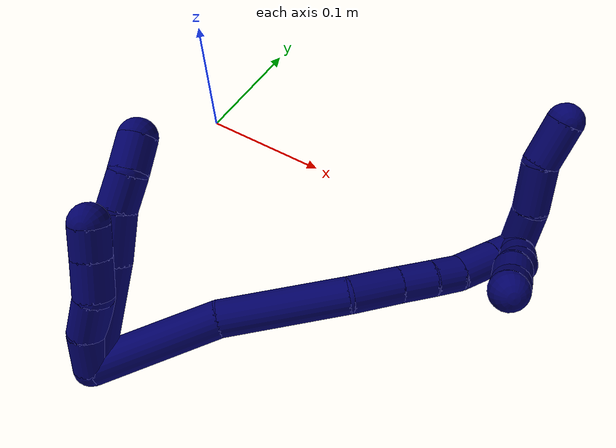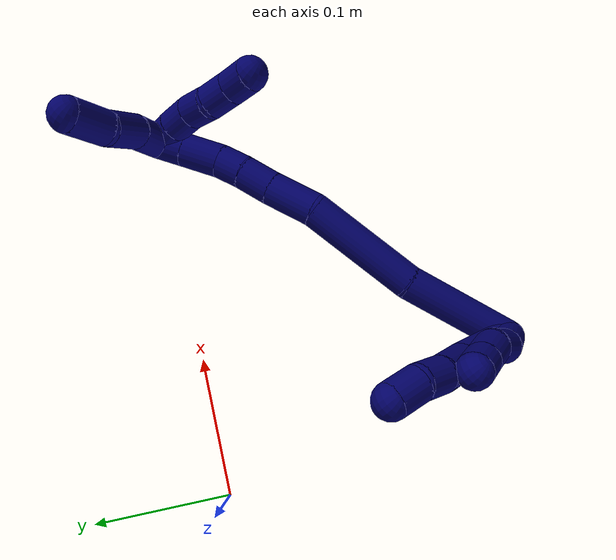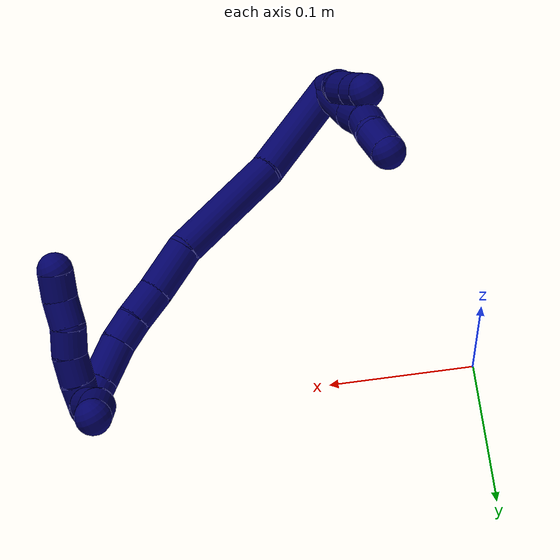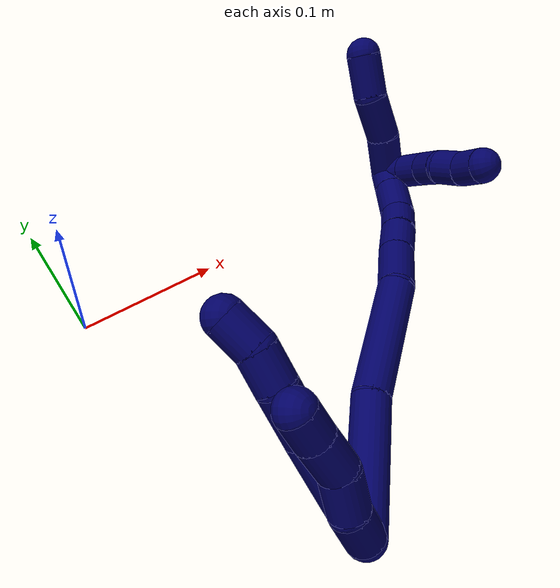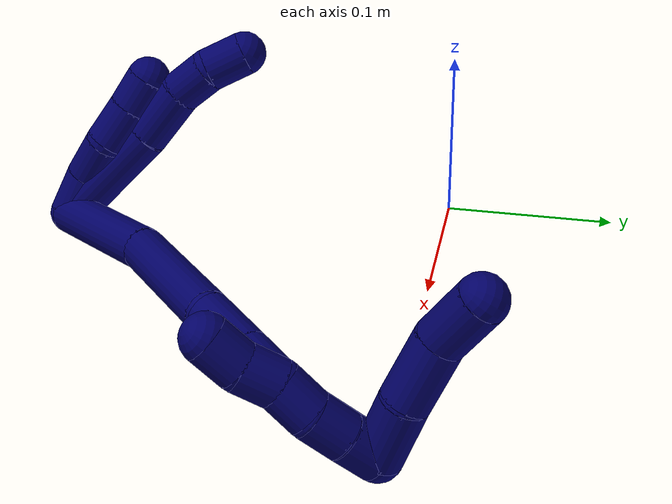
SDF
<sdf version="1.7">
 <world name="default">
  <model name="7">
   <static>0</static>
   <link name="7">
    <collision name="collision-cylinder-e_1_2_8">
     <pose>-0.006309 0.034603 -0.002682 -1.64816 -0.179816 0.194207</pose>
     <geometry><cylinder><radius>0.0125</radius><length>0.070551</length></cylinder></geometry>
     <surface>
      <friction><ode><mu>1.16</mu><mu2>1.16</mu2><slip1>0</slip1><slip2>0</slip2></ode></friction>
      <contact><ode><kp>1e+06</kp><kd>1</kd><max_vel>0</max_vel><min_depth>0.001</min_depth></ode></contact>
     </surface>
    </collision>
    <visual name="visual-cylinder-e_1_2_8">
     <pose>-0.006309 0.034603 -0.002682 -1.64816 -0.179816 0.194207</pose>
     <geometry><cylinder><radius>0.0125</radius><length>0.070551</length></cylinder></geometry>
     <material><ambient>0.003922 0 0.403922 1</ambient></material>
    </visual>
    <collision name="collision-cylinder-e_2_8_9">
     <pose>-0.0165 0.085697 -0.004971 -1.54692 -0.231149 0.225741</pose>
     <geometry><cylinder><radius>0.0125</radius><length>0.033893</length></cylinder></geometry>
     <surface>
      <friction><ode><mu>1.16</mu><mu2>1.16</mu2><slip1>0</slip1><slip2>0</slip2></ode></friction>
      <contact><ode><kp>1e+06</kp><kd>1</kd><max_vel>0</max_vel><min_depth>0.001</min_depth></ode></contact>
     </surface>
    </collision>
    <visual name="visual-cylinder-e_2_8_9">
     <pose>-0.0165 0.085697 -0.004971 -1.54692 -0.231149 0.225741</pose>
     <geometry><cylinder><radius>0.0125</radius><length>0.033893</length></cylinder></geometry>
     <material><ambient>0.003922 0 0.403922 1</ambient></material>
    </visual>
    <collision name="collision-cylinder-e_3_9_10">
     <pose>-0.021221 0.1134 -0.006381 -1.73037 -0.073648 0.086434</pose>
     <geometry><cylinder><radius>0.0125</radius><length>0.022773</length></cylinder></geometry>
     <surface>
      <friction><ode><mu>1.16</mu><mu2>1.16</mu2><slip1>0</slip1><slip2>0</slip2></ode></friction>
      <contact><ode><kp>1e+06</kp><kd>1</kd><max_vel>0</max_vel><min_depth>0.001</min_depth></ode></contact>
     </surface>
    </collision>
    <visual name="visual-cylinder-e_3_9_10">
     <pose>-0.021221 0.1134 -0.006381 -1.73037 -0.073648 0.086434</pose>
     <geometry><cylinder><radius>0.0125</radius><length>0.022773</length></cylinder></geometry>
     <material><ambient>0.003922 0 0.403922 1</ambient></material>
    </visual>
    <collision name="collision-cylinder-e_4_10_6">
     <pose>-0.024111 0.134531 -0.013396 -2.05447 -0.181195 0.29844</pose>
     <geometry><cylinder><radius>0.0125</radius><length>0.022782</length></cylinder></geometry>
     <surface>
      <friction><ode><mu>1.16</mu><mu2>1.16</mu2><slip1>0</slip1><slip2>0</slip2></ode></friction>
      <contact><ode><kp>1e+06</kp><kd>1</kd><max_vel>0</max_vel><min_depth>0.001</min_depth></ode></contact>
     </surface>
    </collision>
    <visual name="visual-cylinder-e_4_10_6">
     <pose>-0.024111 0.134531 -0.013396 -2.05447 -0.181195 0.29844</pose>
     <geometry><cylinder><radius>0.0125</radius><length>0.022782</length></cylinder></geometry>
     <material><ambient>0.003922 0 0.403922 1</ambient></material>
    </visual>
    <collision name="collision-cylinder-e_1_2_11">
     <pose>-0.004983 0.011943 0.002483 -1.36579 -0.387832 0.316825</pose>
     <geometry><cylinder><radius>0.0125</radius><length>0.026355</length></cylinder></geometry>
     <surface>
      <friction><ode><mu>1.16</mu><mu2>1.16</mu2><slip1>0</slip1><slip2>0</slip2></ode></friction>
      <contact><ode><kp>1e+06</kp><kd>1</kd><max_vel>0</max_vel><min_depth>0.001</min_depth></ode></contact>
     </surface>
    </collision>
    <visual name="visual-cylinder-e_1_2_11">
     <pose>-0.004983 0.011943 0.002483 -1.36579 -0.387832 0.316825</pose>
     <geometry><cylinder><radius>0.0125</radius><length>0.026355</length></cylinder></geometry>
     <material><ambient>0.003922 0 0.403922 1</ambient></material>
    </visual>
    <collision name="collision-cylinder-e_2_11_12">
     <pose>-0.011158 0.03716 0.007509 -1.38153 -0.087917 0.072689</pose>
     <geometry><cylinder><radius>0.0125</radius><length>0.027134</length></cylinder></geometry>
     <surface>
      <friction><ode><mu>1.16</mu><mu2>1.16</mu2><slip1>0</slip1><slip2>0</slip2></ode></friction>
      <contact><ode><kp>1e+06</kp><kd>1</kd><max_vel>0</max_vel><min_depth>0.001</min_depth></ode></contact>
     </surface>
    </collision>
    <visual name="visual-cylinder-e_2_11_12">
     <pose>-0.011158 0.03716 0.007509 -1.38153 -0.087917 0.072689</pose>
     <geometry><cylinder><radius>0.0125</radius><length>0.027134</length></cylinder></geometry>
     <material><ambient>0.003922 0 0.403922 1</ambient></material>
    </visual>
    <collision name="collision-cylinder-e_3_12_13">
     <pose>-0.016986 0.062366 0.010316 -1.54863 -0.370523 0.362579</pose>
     <geometry><cylinder><radius>0.0125</radius><length>0.025609</length></cylinder></geometry>
     <surface>
      <friction><ode><mu>1.16</mu><mu2>1.16</mu2><slip1>0</slip1><slip2>0</slip2></ode></friction>
      <contact><ode><kp>1e+06</kp><kd>1</kd><max_vel>0</max_vel><min_depth>0.001</min_depth></ode></contact>
     </surface>
    </collision>
    <visual name="visual-cylinder-e_3_12_13">
     <pose>-0.016986 0.062366 0.010316 -1.54863 -0.370523 0.362579</pose>
     <geometry><cylinder><radius>0.0125</radius><length>0.025609</length></cylinder></geometry>
     <material><ambient>0.003922 0 0.403922 1</ambient></material>
    </visual>
    <collision name="collision-cylinder-e_4_13_5">
     <pose>-0.025334 0.084044 0.011273 -1.49993 -0.36305 0.338683</pose>
     <geometry><cylinder><radius>0.0125</radius><length>0.020902</length></cylinder></geometry>
     <surface>
      <friction><ode><mu>1.16</mu><mu2>1.16</mu2><slip1>0</slip1><slip2>0</slip2></ode></friction>
      <contact><ode><kp>1e+06</kp><kd>1</kd><max_vel>0</max_vel><min_depth>0.001</min_depth></ode></contact>
     </surface>
    </collision>
    <visual name="visual-cylinder-e_4_13_5">
     <pose>-0.025334 0.084044 0.011273 -1.49993 -0.36305 0.338683</pose>
     <geometry><cylinder><radius>0.0125</radius><length>0.020902</length></cylinder></geometry>
     <material><ambient>0.003922 0 0.403922 1</ambient></material>
    </visual>
    <collision name="collision-cylinder-e_1_2_14">
     <pose>0.030604 0.026959 -0.008337 -1.8707 0.825916 -1.07216</pose>
     <geometry><cylinder><radius>0.0125</radius><length>0.083256</length></cylinder></geometry>
     <surface>
      <friction><ode><mu>1.16</mu><mu2>1.16</mu2><slip1>0</slip1><slip2>0</slip2></ode></friction>
      <contact><ode><kp>1e+06</kp><kd>1</kd><max_vel>0</max_vel><min_depth>0.001</min_depth></ode></contact>
     </surface>
    </collision>
    <visual name="visual-cylinder-e_1_2_14">
     <pose>0.030604 0.026959 -0.008337 -1.8707 0.825916 -1.07216</pose>
     <geometry><cylinder><radius>0.0125</radius><length>0.083256</length></cylinder></geometry>
     <material><ambient>0.003922 0 0.403922 1</ambient></material>
    </visual>
    <collision name="collision-cylinder-e_2_14_15">
     <pose>0.097148 0.076193 -0.02178 -1.79615 1.00445 -1.20707</pose>
     <geometry><cylinder><radius>0.0125</radius><length>0.085181</length></cylinder></geometry>
     <surface>
      <friction><ode><mu>1.16</mu><mu2>1.16</mu2><slip1>0</slip1><slip2>0</slip2></ode></friction>
      <contact><ode><kp>1e+06</kp><kd>1</kd><max_vel>0</max_vel><min_depth>0.001</min_depth></ode></contact>
     </surface>
    </collision>
    <visual name="visual-cylinder-e_2_14_15">
     <pose>0.097148 0.076193 -0.02178 -1.79615 1.00445 -1.20707</pose>
     <geometry><cylinder><radius>0.0125</radius><length>0.085181</length></cylinder></geometry>
     <material><ambient>0.003922 0 0.403922 1</ambient></material>
    </visual>
    <collision name="collision-cylinder-e_3_15_16">
     <pose>0.148075 0.106198 -0.033353 -2.2674 0.978741 -1.70132</pose>
     <geometry><cylinder><radius>0.0125</radius><length>0.036122</length></cylinder></geometry>
     <surface>
      <friction><ode><mu>1.16</mu><mu2>1.16</mu2><slip1>0</slip1><slip2>0</slip2></ode></friction>
      <contact><ode><kp>1e+06</kp><kd>1</kd><max_vel>0</max_vel><min_depth>0.001</min_depth></ode></contact>
     </surface>
    </collision>
    <visual name="visual-cylinder-e_3_15_16">
     <pose>0.148075 0.106198 -0.033353 -2.2674 0.978741 -1.70132</pose>
     <geometry><cylinder><radius>0.0125</radius><length>0.036122</length></cylinder></geometry>
     <material><ambient>0.003922 0 0.403922 1</ambient></material>
    </visual>
    <collision name="collision-cylinder-e_4_16_17">
     <pose>0.173409 0.119458 -0.043427 -2.14891 1.00295 -1.58301</pose>
     <geometry><cylinder><radius>0.0125</radius><length>0.024547</length></cylinder></geometry>
     <surface>
      <friction><ode><mu>1.16</mu><mu2>1.16</mu2><slip1>0</slip1><slip2>0</slip2></ode></friction>
      <contact><ode><kp>1e+06</kp><kd>1</kd><max_vel>0</max_vel><min_depth>0.001</min_depth></ode></contact>
     </surface>
    </collision>
    <visual name="visual-cylinder-e_4_16_17">
     <pose>0.173409 0.119458 -0.043427 -2.14891 1.00295 -1.58301</pose>
     <geometry><cylinder><radius>0.0125</radius><length>0.024547</length></cylinder></geometry>
     <material><ambient>0.003922 0 0.403922 1</ambient></material>
    </visual>
    <collision name="collision-cylinder-e_5_17_18">
     <pose>0.192181 0.129182 -0.05089 -2.31405 0.97601 -1.75933</pose>
     <geometry><cylinder><radius>0.0125</radius><length>0.020342</length></cylinder></geometry>
     <surface>
      <friction><ode><mu>1.16</mu><mu2>1.16</mu2><slip1>0</slip1><slip2>0</slip2></ode></friction>
      <contact><ode><kp>1e+06</kp><kd>1</kd><max_vel>0</max_vel><min_depth>0.001</min_depth></ode></contact>
     </surface>
    </collision>
    <visual name="visual-cylinder-e_5_17_18">
     <pose>0.192181 0.129182 -0.05089 -2.31405 0.97601 -1.75933</pose>
     <geometry><cylinder><radius>0.0125</radius><length>0.020342</length></cylinder></geometry>
     <material><ambient>0.003922 0 0.403922 1</ambient></material>
    </visual>
    <collision name="collision-cylinder-e_6_18_19">
     <pose>0.211105 0.14128 -0.061268 -2.26071 0.797695 -1.45916</pose>
     <geometry><cylinder><radius>0.0125</radius><length>0.029341</length></cylinder></geometry>
     <surface>
      <friction><ode><mu>1.16</mu><mu2>1.16</mu2><slip1>0</slip1><slip2>0</slip2></ode></friction>
      <contact><ode><kp>1e+06</kp><kd>1</kd><max_vel>0</max_vel><min_depth>0.001</min_depth></ode></contact>
     </surface>
    </collision>
    <visual name="visual-cylinder-e_6_18_19">
     <pose>0.211105 0.14128 -0.061268 -2.26071 0.797695 -1.45916</pose>
     <geometry><cylinder><radius>0.0125</radius><length>0.029341</length></cylinder></geometry>
     <material><ambient>0.003922 0 0.403922 1</ambient></material>
    </visual>
    <collision name="collision-cylinder-e_7_19_1">
     <pose>0.229182 0.154839 -0.072594 -2.27502 0.795695 -1.47494</pose>
     <geometry><cylinder><radius>0.0125</radius><length>0.021212</length></cylinder></geometry>
     <surface>
      <friction><ode><mu>1.16</mu><mu2>1.16</mu2><slip1>0</slip1><slip2>0</slip2></ode></friction>
      <contact><ode><kp>1e+06</kp><kd>1</kd><max_vel>0</max_vel><min_depth>0.001</min_depth></ode></contact>
     </surface>
    </collision>
    <visual name="visual-cylinder-e_7_19_1">
     <pose>0.229182 0.154839 -0.072594 -2.27502 0.795695 -1.47494</pose>
     <geometry><cylinder><radius>0.0125</radius><length>0.021212</length></cylinder></geometry>
     <material><ambient>0.003922 0 0.403922 1</ambient></material>
    </visual>
    <collision name="collision-cylinder-e_1_1_20">
     <pose>0.235123 0.160298 -0.067536 0.019986 -0.164307 -0.001646</pose>
     <geometry><cylinder><radius>0.0125</radius><length>0.02</length></cylinder></geometry>
     <surface>
      <friction><ode><mu>1.16</mu><mu2>1.16</mu2><slip1>0</slip1><slip2>0</slip2></ode></friction>
      <contact><ode><kp>1e+06</kp><kd>1</kd><max_vel>0</max_vel><min_depth>0.001</min_depth></ode></contact>
     </surface>
    </collision>
    <visual name="visual-cylinder-e_1_1_20">
     <pose>0.235123 0.160298 -0.067536 0.019986 -0.164307 -0.001646</pose>
     <geometry><cylinder><radius>0.0125</radius><length>0.02</length></cylinder></geometry>
     <material><ambient>0.003922 0 0.403922 1</ambient></material>
    </visual>
    <collision name="collision-cylinder-e_2_20_21">
     <pose>0.231178 0.159585 -0.047956 0.05303 -0.232953 -0.006206</pose>
     <geometry><cylinder><radius>0.0125</radius><length>0.02</length></cylinder></geometry>
     <surface>
      <friction><ode><mu>1.16</mu><mu2>1.16</mu2><slip1>0</slip1><slip2>0</slip2></ode></friction>
      <contact><ode><kp>1e+06</kp><kd>1</kd><max_vel>0</max_vel><min_depth>0.001</min_depth></ode></contact>
     </surface>
    </collision>
    <visual name="visual-cylinder-e_2_20_21">
     <pose>0.231178 0.159585 -0.047956 0.05303 -0.232953 -0.006206</pose>
     <geometry><cylinder><radius>0.0125</radius><length>0.02</length></cylinder></geometry>
     <material><ambient>0.003922 0 0.403922 1</ambient></material>
    </visual>
    <collision name="collision-cylinder-e_3_21_22">
     <pose>0.22448 0.158915 -0.029257 0.017201 -0.454531 -0.003978</pose>
     <geometry><cylinder><radius>0.0125</radius><length>0.02</length></cylinder></geometry>
     <surface>
      <friction><ode><mu>1.16</mu><mu2>1.16</mu2><slip1>0</slip1><slip2>0</slip2></ode></friction>
      <contact><ode><kp>1e+06</kp><kd>1</kd><max_vel>0</max_vel><min_depth>0.001</min_depth></ode></contact>
     </surface>
    </collision>
    <visual name="visual-cylinder-e_3_21_22">
     <pose>0.22448 0.158915 -0.029257 0.017201 -0.454531 -0.003978</pose>
     <geometry><cylinder><radius>0.0125</radius><length>0.02</length></cylinder></geometry>
     <material><ambient>0.003922 0 0.403922 1</ambient></material>
    </visual>
    <collision name="collision-cylinder-e_4_22_23">
     <pose>0.218014 0.15658 -0.010737 0.224781 -0.208989 -0.023673</pose>
     <geometry><cylinder><radius>0.0125</radius><length>0.02</length></cylinder></geometry>
     <surface>
      <friction><ode><mu>1.16</mu><mu2>1.16</mu2><slip1>0</slip1><slip2>0</slip2></ode></friction>
      <contact><ode><kp>1e+06</kp><kd>1</kd><max_vel>0</max_vel><min_depth>0.001</min_depth></ode></contact>
     </surface>
    </collision>
    <visual name="visual-cylinder-e_4_22_23">
     <pose>0.218014 0.15658 -0.010737 0.224781 -0.208989 -0.023673</pose>
     <geometry><cylinder><radius>0.0125</radius><length>0.02</length></cylinder></geometry>
     <material><ambient>0.003922 0 0.403922 1</ambient></material>
    </visual>
    <collision name="collision-cylinder-e_5_23_4">
     <pose>0.212579 0.154462 0.008217 -0.006623 -0.342759 0.001146</pose>
     <geometry><cylinder><radius>0.0125</radius><length>0.02</length></cylinder></geometry>
     <surface>
      <friction><ode><mu>1.16</mu><mu2>1.16</mu2><slip1>0</slip1><slip2>0</slip2></ode></friction>
      <contact><ode><kp>1e+06</kp><kd>1</kd><max_vel>0</max_vel><min_depth>0.001</min_depth></ode></contact>
     </surface>
    </collision>
    <visual name="visual-cylinder-e_5_23_4">
     <pose>0.212579 0.154462 0.008217 -0.006623 -0.342759 0.001146</pose>
     <geometry><cylinder><radius>0.0125</radius><length>0.02</length></cylinder></geometry>
     <material><ambient>0.003922 0 0.403922 1</ambient></material>
    </visual>
    <collision name="collision-cylinder-e_1_1_24">
     <pose>0.233092 0.176178 -0.07171 -1.22279 -0.216337 0.151953</pose>
     <geometry><cylinder><radius>0.0125</radius><length>0.034163</length></cylinder></geometry>
     <surface>
      <friction><ode><mu>1.16</mu><mu2>1.16</mu2><slip1>0</slip1><slip2>0</slip2></ode></friction>
      <contact><ode><kp>1e+06</kp><kd>1</kd><max_vel>0</max_vel><min_depth>0.001</min_depth></ode></contact>
     </surface>
    </collision>
    <visual name="visual-cylinder-e_1_1_24">
     <pose>0.233092 0.176178 -0.07171 -1.22279 -0.216337 0.151953</pose>
     <geometry><cylinder><radius>0.0125</radius><length>0.034163</length></cylinder></geometry>
     <material><ambient>0.003922 0 0.403922 1</ambient></material>
    </visual>
    <collision name="collision-cylinder-e_2_24_25">
     <pose>0.223854 0.207894 -0.062456 -1.35206 -0.32705 0.263166</pose>
     <geometry><cylinder><radius>0.0125</radius><length>0.034686</length></cylinder></geometry>
     <surface>
      <friction><ode><mu>1.16</mu><mu2>1.16</mu2><slip1>0</slip1><slip2>0</slip2></ode></friction>
      <contact><ode><kp>1e+06</kp><kd>1</kd><max_vel>0</max_vel><min_depth>0.001</min_depth></ode></contact>
     </surface>
    </collision>
    <visual name="visual-cylinder-e_2_24_25">
     <pose>0.223854 0.207894 -0.062456 -1.35206 -0.32705 0.263166</pose>
     <geometry><cylinder><radius>0.0125</radius><length>0.034686</length></cylinder></geometry>
     <material><ambient>0.003922 0 0.403922 1</ambient></material>
    </visual>
    <collision name="collision-cylinder-e_3_25_3">
     <pose>0.218458 0.239325 -0.056559 -1.42044 0.011305 -0.009721</pose>
     <geometry><cylinder><radius>0.0125</radius><length>0.031151</length></cylinder></geometry>
     <surface>
      <friction><ode><mu>1.16</mu><mu2>1.16</mu2><slip1>0</slip1><slip2>0</slip2></ode></friction>
      <contact><ode><kp>1e+06</kp><kd>1</kd><max_vel>0</max_vel><min_depth>0.001</min_depth></ode></contact>
     </surface>
    </collision>
    <visual name="visual-cylinder-e_3_25_3">
     <pose>0.218458 0.239325 -0.056559 -1.42044 0.011305 -0.009721</pose>
     <geometry><cylinder><radius>0.0125</radius><length>0.031151</length></cylinder></geometry>
     <material><ambient>0.003922 0 0.403922 1</ambient></material>
    </visual>
    <collision name="collision-sphere-3">
     <pose>0.218634 0.254724 -0.054226 0 -0 0</pose>
     <geometry><sphere><radius>0.0125</radius></sphere></geometry>
     <surface>
      <friction><ode><mu>1.16</mu><mu2>1.16</mu2><slip1>0</slip1><slip2>0</slip2></ode></friction>
      <contact><ode><kp>1e+06</kp><kd>1</kd><max_vel>0</max_vel><min_depth>0.001</min_depth></ode></contact>
     </surface>
    </collision>
    <visual name="visual-sphere-3">
     <pose>0.218634 0.254724 -0.054226 0 -0 0</pose>
     <geometry><sphere><radius>0.0125</radius></sphere></geometry>
     <material><ambient>0.003922 0 0.403922 1</ambient></material>
    </visual>
    <collision name="collision-sphere-25">
     <pose>0.218282 0.223926 -0.058892 0 -0 0</pose>
     <geometry><sphere><radius>0.0125</radius></sphere></geometry>
     <surface>
      <friction><ode><mu>1.16</mu><mu2>1.16</mu2><slip1>0</slip1><slip2>0</slip2></ode></friction>
      <contact><ode><kp>1e+06</kp><kd>1</kd><max_vel>0</max_vel><min_depth>0.001</min_depth></ode></contact>
     </surface>
    </collision>
    <visual name="visual-sphere-25">
     <pose>0.218282 0.223926 -0.058892 0 -0 0</pose>
     <geometry><sphere><radius>0.0125</radius></sphere></geometry>
     <material><ambient>0.003922 0 0.403922 1</ambient></material>
    </visual>
    <collision name="collision-sphere-24">
     <pose>0.229425 0.191861 -0.06602 0 -0 0</pose>
     <geometry><sphere><radius>0.0125</radius></sphere></geometry>
     <surface>
      <friction><ode><mu>1.16</mu><mu2>1.16</mu2><slip1>0</slip1><slip2>0</slip2></ode></friction>
      <contact><ode><kp>1e+06</kp><kd>1</kd><max_vel>0</max_vel><min_depth>0.001</min_depth></ode></contact>
     </surface>
    </collision>
    <visual name="visual-sphere-24">
     <pose>0.229425 0.191861 -0.06602 0 -0 0</pose>
     <geometry><sphere><radius>0.0125</radius></sphere></geometry>
     <material><ambient>0.003922 0 0.403922 1</ambient></material>
    </visual>
    <collision name="collision-sphere-4">
     <pose>0.209218 0.154524 0.017636 0 -0 0</pose>
     <geometry><sphere><radius>0.0125</radius></sphere></geometry>
     <surface>
      <friction><ode><mu>1.16</mu><mu2>1.16</mu2><slip1>0</slip1><slip2>0</slip2></ode></friction>
      <contact><ode><kp>1e+06</kp><kd>1</kd><max_vel>0</max_vel><min_depth>0.001</min_depth></ode></contact>
     </surface>
    </collision>
    <visual name="visual-sphere-4">
     <pose>0.209218 0.154524 0.017636 0 -0 0</pose>
     <geometry><sphere><radius>0.0125</radius></sphere></geometry>
     <material><ambient>0.003922 0 0.403922 1</ambient></material>
    </visual>
    <collision name="collision-sphere-23">
     <pose>0.21594 0.154399 -0.001201 0 -0 0</pose>
     <geometry><sphere><radius>0.0125</radius></sphere></geometry>
     <surface>
      <friction><ode><mu>1.16</mu><mu2>1.16</mu2><slip1>0</slip1><slip2>0</slip2></ode></friction>
      <contact><ode><kp>1e+06</kp><kd>1</kd><max_vel>0</max_vel><min_depth>0.001</min_depth></ode></contact>
     </surface>
    </collision>
    <visual name="visual-sphere-23">
     <pose>0.21594 0.154399 -0.001201 0 -0 0</pose>
     <geometry><sphere><radius>0.0125</radius></sphere></geometry>
     <material><ambient>0.003922 0 0.403922 1</ambient></material>
    </visual>
    <collision name="collision-sphere-22">
     <pose>0.220089 0.15876 -0.020273 0 -0 0</pose>
     <geometry><sphere><radius>0.0125</radius></sphere></geometry>
     <surface>
      <friction><ode><mu>1.16</mu><mu2>1.16</mu2><slip1>0</slip1><slip2>0</slip2></ode></friction>
      <contact><ode><kp>1e+06</kp><kd>1</kd><max_vel>0</max_vel><min_depth>0.001</min_depth></ode></contact>
     </surface>
    </collision>
    <visual name="visual-sphere-22">
     <pose>0.220089 0.15876 -0.020273 0 -0 0</pose>
     <geometry><sphere><radius>0.0125</radius></sphere></geometry>
     <material><ambient>0.003922 0 0.403922 1</ambient></material>
    </visual>
    <collision name="collision-sphere-21">
     <pose>0.22887 0.159069 -0.03824 0 -0 0</pose>
     <geometry><sphere><radius>0.0125</radius></sphere></geometry>
     <surface>
      <friction><ode><mu>1.16</mu><mu2>1.16</mu2><slip1>0</slip1><slip2>0</slip2></ode></friction>
      <contact><ode><kp>1e+06</kp><kd>1</kd><max_vel>0</max_vel><min_depth>0.001</min_depth></ode></contact>
     </surface>
    </collision>
    <visual name="visual-sphere-21">
     <pose>0.22887 0.159069 -0.03824 0 -0 0</pose>
     <geometry><sphere><radius>0.0125</radius></sphere></geometry>
     <material><ambient>0.003922 0 0.403922 1</ambient></material>
    </visual>
    <collision name="collision-sphere-20">
     <pose>0.233487 0.160101 -0.057672 0 -0 0</pose>
     <geometry><sphere><radius>0.0125</radius></sphere></geometry>
     <surface>
      <friction><ode><mu>1.16</mu><mu2>1.16</mu2><slip1>0</slip1><slip2>0</slip2></ode></friction>
      <contact><ode><kp>1e+06</kp><kd>1</kd><max_vel>0</max_vel><min_depth>0.001</min_depth></ode></contact>
     </surface>
    </collision>
    <visual name="visual-sphere-20">
     <pose>0.233487 0.160101 -0.057672 0 -0 0</pose>
     <geometry><sphere><radius>0.0125</radius></sphere></geometry>
     <material><ambient>0.003922 0 0.403922 1</ambient></material>
    </visual>
    <collision name="collision-sphere-11">
     <pose>-0.009967 0.023887 0.004967 0 -0 0</pose>
     <geometry><sphere><radius>0.0125</radius></sphere></geometry>
     <surface>
      <friction><ode><mu>1.16</mu><mu2>1.16</mu2><slip1>0</slip1><slip2>0</slip2></ode></friction>
      <contact><ode><kp>1e+06</kp><kd>1</kd><max_vel>0</max_vel><min_depth>0.001</min_depth></ode></contact>
     </surface>
    </collision>
    <visual name="visual-sphere-11">
     <pose>-0.009967 0.023887 0.004967 0 -0 0</pose>
     <geometry><sphere><radius>0.0125</radius></sphere></geometry>
     <material><ambient>0.003922 0 0.403922 1</ambient></material>
    </visual>
    <collision name="collision-sphere-6">
     <pose>-0.026164 0.14445 -0.018607 0 -0 0</pose>
     <geometry><sphere><radius>0.0125</radius></sphere></geometry>
     <surface>
      <friction><ode><mu>1.16</mu><mu2>1.16</mu2><slip1>0</slip1><slip2>0</slip2></ode></friction>
      <contact><ode><kp>1e+06</kp><kd>1</kd><max_vel>0</max_vel><min_depth>0.001</min_depth></ode></contact>
     </surface>
    </collision>
    <visual name="visual-sphere-6">
     <pose>-0.026164 0.14445 -0.018607 0 -0 0</pose>
     <geometry><sphere><radius>0.0125</radius></sphere></geometry>
     <material><ambient>0.003922 0 0.403922 1</ambient></material>
    </visual>
    <collision name="collision-sphere-10">
     <pose>-0.022059 0.124612 -0.008186 0 -0 0</pose>
     <geometry><sphere><radius>0.0125</radius></sphere></geometry>
     <surface>
      <friction><ode><mu>1.16</mu><mu2>1.16</mu2><slip1>0</slip1><slip2>0</slip2></ode></friction>
      <contact><ode><kp>1e+06</kp><kd>1</kd><max_vel>0</max_vel><min_depth>0.001</min_depth></ode></contact>
     </surface>
    </collision>
    <visual name="visual-sphere-10">
     <pose>-0.022059 0.124612 -0.008186 0 -0 0</pose>
     <geometry><sphere><radius>0.0125</radius></sphere></geometry>
     <material><ambient>0.003922 0 0.403922 1</ambient></material>
    </visual>
    <collision name="collision-sphere-9">
     <pose>-0.020383 0.102188 -0.004577 0 -0 0</pose>
     <geometry><sphere><radius>0.0125</radius></sphere></geometry>
     <surface>
      <friction><ode><mu>1.16</mu><mu2>1.16</mu2><slip1>0</slip1><slip2>0</slip2></ode></friction>
      <contact><ode><kp>1e+06</kp><kd>1</kd><max_vel>0</max_vel><min_depth>0.001</min_depth></ode></contact>
     </surface>
    </collision>
    <visual name="visual-sphere-9">
     <pose>-0.020383 0.102188 -0.004577 0 -0 0</pose>
     <geometry><sphere><radius>0.0125</radius></sphere></geometry>
     <material><ambient>0.003922 0 0.403922 1</ambient></material>
    </visual>
    <collision name="collision-sphere-2">
     <geometry><sphere><radius>0.0125</radius></sphere></geometry>
     <surface>
      <friction><ode><mu>1.16</mu><mu2>1.16</mu2><slip1>0</slip1><slip2>0</slip2></ode></friction>
      <contact><ode><kp>1e+06</kp><kd>1</kd><max_vel>0</max_vel><min_depth>0.001</min_depth></ode></contact>
     </surface>
    </collision>
    <visual name="visual-sphere-2">
     <geometry><sphere><radius>0.0125</radius></sphere></geometry>
     <material><ambient>0.003922 0 0.403922 1</ambient></material>
    </visual>
    <collision name="collision-sphere-19">
     <pose>0.221606 0.149182 -0.067789 0 -0 0</pose>
     <geometry><sphere><radius>0.0125</radius></sphere></geometry>
     <surface>
      <friction><ode><mu>1.16</mu><mu2>1.16</mu2><slip1>0</slip1><slip2>0</slip2></ode></friction>
      <contact><ode><kp>1e+06</kp><kd>1</kd><max_vel>0</max_vel><min_depth>0.001</min_depth></ode></contact>
     </surface>
    </collision>
    <visual name="visual-sphere-19">
     <pose>0.221606 0.149182 -0.067789 0 -0 0</pose>
     <geometry><sphere><radius>0.0125</radius></sphere></geometry>
     <material><ambient>0.003922 0 0.403922 1</ambient></material>
    </visual>
    <collision name="collision-sphere-8">
     <pose>-0.012618 0.069206 -0.005365 0 -0 0</pose>
     <geometry><sphere><radius>0.0125</radius></sphere></geometry>
     <surface>
      <friction><ode><mu>1.16</mu><mu2>1.16</mu2><slip1>0</slip1><slip2>0</slip2></ode></friction>
      <contact><ode><kp>1e+06</kp><kd>1</kd><max_vel>0</max_vel><min_depth>0.001</min_depth></ode></contact>
     </surface>
    </collision>
    <visual name="visual-sphere-8">
     <pose>-0.012618 0.069206 -0.005365 0 -0 0</pose>
     <geometry><sphere><radius>0.0125</radius></sphere></geometry>
     <material><ambient>0.003922 0 0.403922 1</ambient></material>
    </visual>
    <collision name="collision-sphere-12">
     <pose>-0.012349 0.050433 0.010052 0 -0 0</pose>
     <geometry><sphere><radius>0.0125</radius></sphere></geometry>
     <surface>
      <friction><ode><mu>1.16</mu><mu2>1.16</mu2><slip1>0</slip1><slip2>0</slip2></ode></friction>
      <contact><ode><kp>1e+06</kp><kd>1</kd><max_vel>0</max_vel><min_depth>0.001</min_depth></ode></contact>
     </surface>
    </collision>
    <visual name="visual-sphere-12">
     <pose>-0.012349 0.050433 0.010052 0 -0 0</pose>
     <geometry><sphere><radius>0.0125</radius></sphere></geometry>
     <material><ambient>0.003922 0 0.403922 1</ambient></material>
    </visual>
    <collision name="collision-sphere-13">
     <pose>-0.021622 0.074298 0.010581 0 -0 0</pose>
     <geometry><sphere><radius>0.0125</radius></sphere></geometry>
     <surface>
      <friction><ode><mu>1.16</mu><mu2>1.16</mu2><slip1>0</slip1><slip2>0</slip2></ode></friction>
      <contact><ode><kp>1e+06</kp><kd>1</kd><max_vel>0</max_vel><min_depth>0.001</min_depth></ode></contact>
     </surface>
    </collision>
    <visual name="visual-sphere-13">
     <pose>-0.021622 0.074298 0.010581 0 -0 0</pose>
     <geometry><sphere><radius>0.0125</radius></sphere></geometry>
     <material><ambient>0.003922 0 0.403922 1</ambient></material>
    </visual>
    <collision name="collision-sphere-5">
     <pose>-0.029045 0.093789 0.011964 0 -0 0</pose>
     <geometry><sphere><radius>0.0125</radius></sphere></geometry>
     <surface>
      <friction><ode><mu>1.16</mu><mu2>1.16</mu2><slip1>0</slip1><slip2>0</slip2></ode></friction>
      <contact><ode><kp>1e+06</kp><kd>1</kd><max_vel>0</max_vel><min_depth>0.001</min_depth></ode></contact>
     </surface>
    </collision>
    <visual name="visual-sphere-5">
     <pose>-0.029045 0.093789 0.011964 0 -0 0</pose>
     <geometry><sphere><radius>0.0125</radius></sphere></geometry>
     <material><ambient>0.003922 0 0.403922 1</ambient></material>
    </visual>
    <collision name="collision-sphere-14">
     <pose>0.061207 0.053919 -0.016673 0 -0 0</pose>
     <geometry><sphere><radius>0.0125</radius></sphere></geometry>
     <surface>
      <friction><ode><mu>1.16</mu><mu2>1.16</mu2><slip1>0</slip1><slip2>0</slip2></ode></friction>
      <contact><ode><kp>1e+06</kp><kd>1</kd><max_vel>0</max_vel><min_depth>0.001</min_depth></ode></contact>
     </surface>
    </collision>
    <visual name="visual-sphere-14">
     <pose>0.061207 0.053919 -0.016673 0 -0 0</pose>
     <geometry><sphere><radius>0.0125</radius></sphere></geometry>
     <material><ambient>0.003922 0 0.403922 1</ambient></material>
    </visual>
    <collision name="collision-sphere-15">
     <pose>0.133088 0.098467 -0.026886 0 -0 0</pose>
     <geometry><sphere><radius>0.0125</radius></sphere></geometry>
     <surface>
      <friction><ode><mu>1.16</mu><mu2>1.16</mu2><slip1>0</slip1><slip2>0</slip2></ode></friction>
      <contact><ode><kp>1e+06</kp><kd>1</kd><max_vel>0</max_vel><min_depth>0.001</min_depth></ode></contact>
     </surface>
    </collision>
    <visual name="visual-sphere-15">
     <pose>0.133088 0.098467 -0.026886 0 -0 0</pose>
     <geometry><sphere><radius>0.0125</radius></sphere></geometry>
     <material><ambient>0.003922 0 0.403922 1</ambient></material>
    </visual>
    <collision name="collision-sphere-16">
     <pose>0.163062 0.113929 -0.03982 0 -0 0</pose>
     <geometry><sphere><radius>0.0125</radius></sphere></geometry>
     <surface>
      <friction><ode><mu>1.16</mu><mu2>1.16</mu2><slip1>0</slip1><slip2>0</slip2></ode></friction>
      <contact><ode><kp>1e+06</kp><kd>1</kd><max_vel>0</max_vel><min_depth>0.001</min_depth></ode></contact>
     </surface>
    </collision>
    <visual name="visual-sphere-16">
     <pose>0.163062 0.113929 -0.03982 0 -0 0</pose>
     <geometry><sphere><radius>0.0125</radius></sphere></geometry>
     <material><ambient>0.003922 0 0.403922 1</ambient></material>
    </visual>
    <collision name="collision-sphere-17">
     <pose>0.183756 0.124986 -0.047034 0 -0 0</pose>
     <geometry><sphere><radius>0.0125</radius></sphere></geometry>
     <surface>
      <friction><ode><mu>1.16</mu><mu2>1.16</mu2><slip1>0</slip1><slip2>0</slip2></ode></friction>
      <contact><ode><kp>1e+06</kp><kd>1</kd><max_vel>0</max_vel><min_depth>0.001</min_depth></ode></contact>
     </surface>
    </collision>
    <visual name="visual-sphere-17">
     <pose>0.183756 0.124986 -0.047034 0 -0 0</pose>
     <geometry><sphere><radius>0.0125</radius></sphere></geometry>
     <material><ambient>0.003922 0 0.403922 1</ambient></material>
    </visual>
    <collision name="collision-sphere-18">
     <pose>0.200605 0.133378 -0.054747 0 -0 0</pose>
     <geometry><sphere><radius>0.0125</radius></sphere></geometry>
     <surface>
      <friction><ode><mu>1.16</mu><mu2>1.16</mu2><slip1>0</slip1><slip2>0</slip2></ode></friction>
      <contact><ode><kp>1e+06</kp><kd>1</kd><max_vel>0</max_vel><min_depth>0.001</min_depth></ode></contact>
     </surface>
    </collision>
    <visual name="visual-sphere-18">
     <pose>0.200605 0.133378 -0.054747 0 -0 0</pose>
     <geometry><sphere><radius>0.0125</radius></sphere></geometry>
     <material><ambient>0.003922 0 0.403922 1</ambient></material>
    </visual>
    <collision name="collision-sphere-1">
     <pose>0.236758 0.160495 -0.077399 0 -0 0</pose>
     <geometry><sphere><radius>0.0125</radius></sphere></geometry>
     <surface>
      <friction><ode><mu>1.16</mu><mu2>1.16</mu2><slip1>0</slip1><slip2>0</slip2></ode></friction>
      <contact><ode><kp>1e+06</kp><kd>1</kd><max_vel>0</max_vel><min_depth>0.001</min_depth></ode></contact>
     </surface>
    </collision>
    <visual name="visual-sphere-1">
     <pose>0.236758 0.160495 -0.077399 0 -0 0</pose>
     <geometry><sphere><radius>0.0125</radius></sphere></geometry>
     <material><ambient>0.003922 0 0.403922 1</ambient></material>
    </visual>
    <inertial>
     <pose>0.102557 0.103617 -0.024741 0 -0 0</pose>
     <mass>0.75</mass>
     <inertia><ixx>5e-05</ixx><ixy>0</ixy><ixz>0</ixz><iyy>6.5e-05</iyy><iyz>0</iyz><izz>-0.000206</izz></inertia>
    </inertial>
   </link>
   <pose>0.069001 -0.221266 0.011994 0.867423 0.296427 0.256462</pose>
  </model>
 </world>
</sdf>
